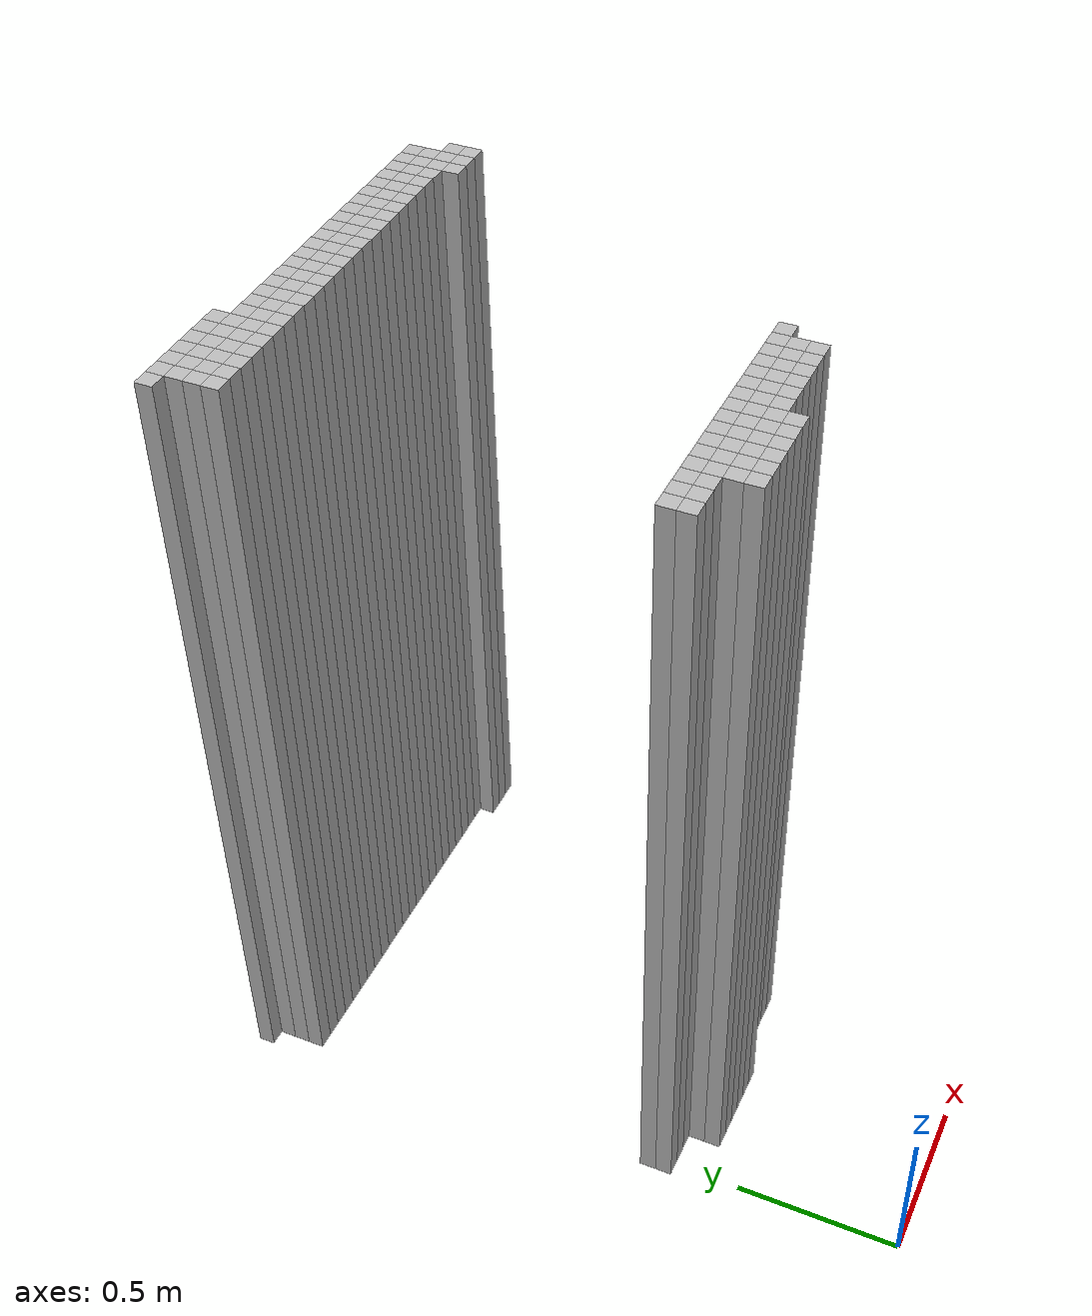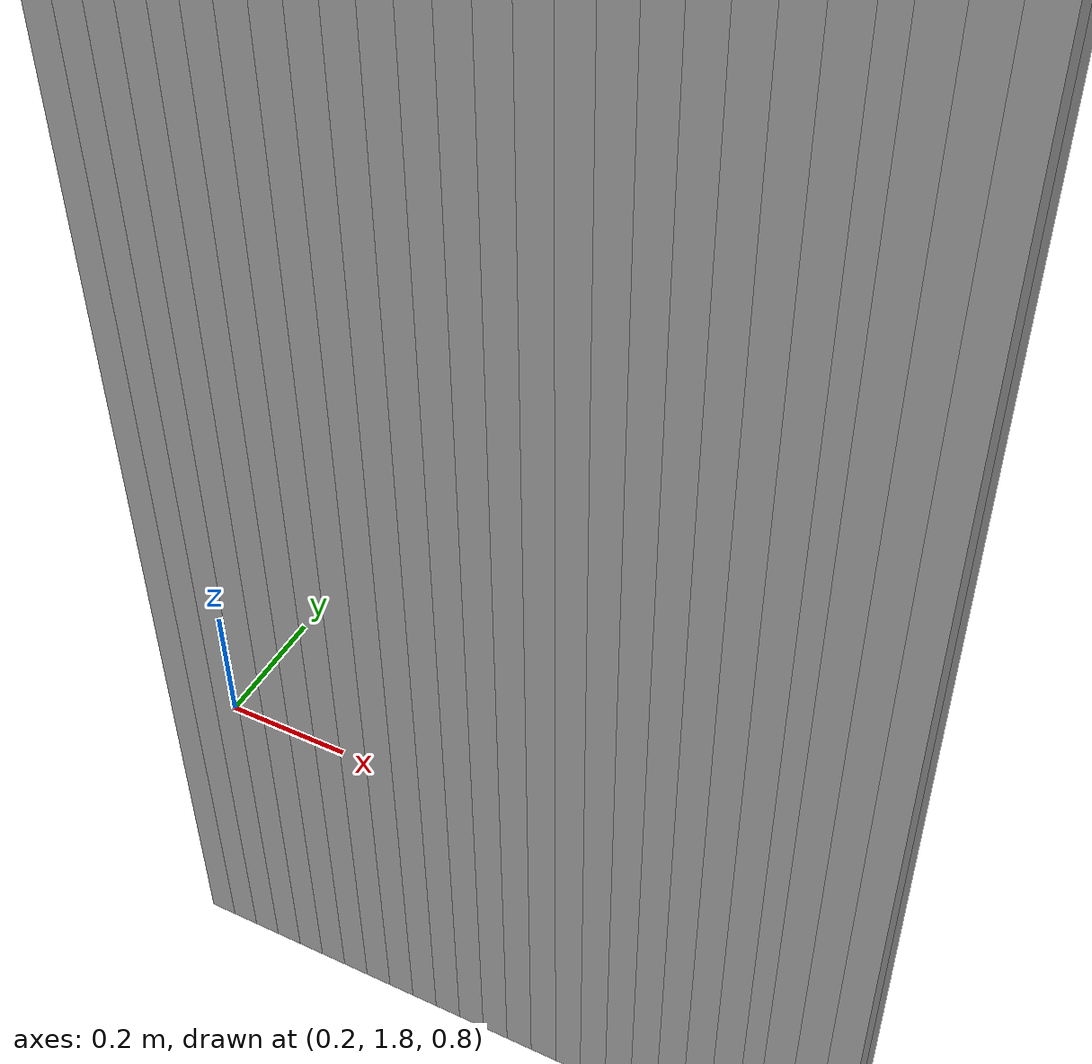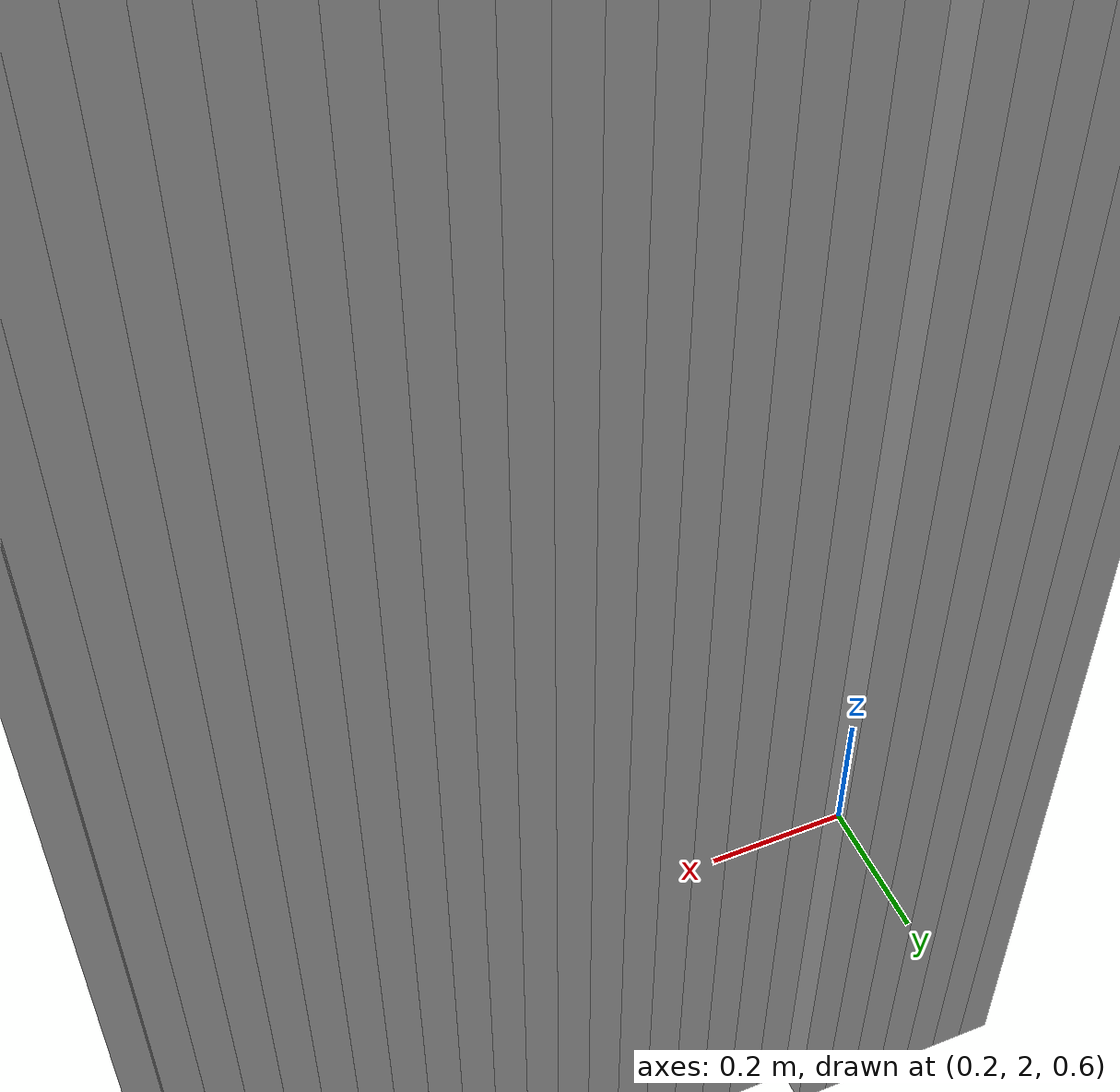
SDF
<sdf version="1.9">
 <world name="map_world">
  <model name="wall_222_112">
   <static>true</static>
   <pose>-0.061 2.080 1.250 0 0 0</pose>
   <link name="link">
    <collision name="collision"><geometry><box><size>0.050 0.050 2.500</size></box></geometry></collision>
    <visual name="visual"><geometry><box><size>0.050 0.050 2.500</size></box></geometry></visual>
   </link>
  </model>
  <model name="wall_223_112">
   <static>true</static>
   <pose>-0.011 2.080 1.250 0 0 0</pose>
   <link name="link">
    <collision name="collision"><geometry><box><size>0.050 0.050 2.500</size></box></geometry></collision>
    <visual name="visual"><geometry><box><size>0.050 0.050 2.500</size></box></geometry></visual>
   </link>
  </model>
  <model name="wall_224_112">
   <static>true</static>
   <pose>0.039 2.080 1.250 0 0 0</pose>
   <link name="link">
    <collision name="collision"><geometry><box><size>0.050 0.050 2.500</size></box></geometry></collision>
    <visual name="visual"><geometry><box><size>0.050 0.050 2.500</size></box></geometry></visual>
   </link>
  </model>
  <model name="wall_225_112">
   <static>true</static>
   <pose>0.089 2.080 1.250 0 0 0</pose>
   <link name="link">
    <collision name="collision"><geometry><box><size>0.050 0.050 2.500</size></box></geometry></collision>
    <visual name="visual"><geometry><box><size>0.050 0.050 2.500</size></box></geometry></visual>
   </link>
  </model>
  <model name="wall_226_112">
   <static>true</static>
   <pose>0.139 2.080 1.250 0 0 0</pose>
   <link name="link">
    <collision name="collision"><geometry><box><size>0.050 0.050 2.500</size></box></geometry></collision>
    <visual name="visual"><geometry><box><size>0.050 0.050 2.500</size></box></geometry></visual>
   </link>
  </model>
  <model name="wall_227_112">
   <static>true</static>
   <pose>0.189 2.080 1.250 0 0 0</pose>
   <link name="link">
    <collision name="collision"><geometry><box><size>0.050 0.050 2.500</size></box></geometry></collision>
    <visual name="visual"><geometry><box><size>0.050 0.050 2.500</size></box></geometry></visual>
   </link>
  </model>
  <model name="wall_228_112">
   <static>true</static>
   <pose>0.239 2.080 1.250 0 0 0</pose>
   <link name="link">
    <collision name="collision"><geometry><box><size>0.050 0.050 2.500</size></box></geometry></collision>
    <visual name="visual"><geometry><box><size>0.050 0.050 2.500</size></box></geometry></visual>
   </link>
  </model>
  <model name="wall_223_113">
   <static>true</static>
   <pose>-0.011 2.030 1.250 0 0 0</pose>
   <link name="link">
    <collision name="collision"><geometry><box><size>0.050 0.050 2.500</size></box></geometry></collision>
    <visual name="visual"><geometry><box><size>0.050 0.050 2.500</size></box></geometry></visual>
   </link>
  </model>
  <model name="wall_224_113">
   <static>true</static>
   <pose>0.039 2.030 1.250 0 0 0</pose>
   <link name="link">
    <collision name="collision"><geometry><box><size>0.050 0.050 2.500</size></box></geometry></collision>
    <visual name="visual"><geometry><box><size>0.050 0.050 2.500</size></box></geometry></visual>
   </link>
  </model>
  <model name="wall_225_113">
   <static>true</static>
   <pose>0.089 2.030 1.250 0 0 0</pose>
   <link name="link">
    <collision name="collision"><geometry><box><size>0.050 0.050 2.500</size></box></geometry></collision>
    <visual name="visual"><geometry><box><size>0.050 0.050 2.500</size></box></geometry></visual>
   </link>
  </model>
  <model name="wall_226_113">
   <static>true</static>
   <pose>0.139 2.030 1.250 0 0 0</pose>
   <link name="link">
    <collision name="collision"><geometry><box><size>0.050 0.050 2.500</size></box></geometry></collision>
    <visual name="visual"><geometry><box><size>0.050 0.050 2.500</size></box></geometry></visual>
   </link>
  </model>
  <model name="wall_227_113">
   <static>true</static>
   <pose>0.189 2.030 1.250 0 0 0</pose>
   <link name="link">
    <collision name="collision"><geometry><box><size>0.050 0.050 2.500</size></box></geometry></collision>
    <visual name="visual"><geometry><box><size>0.050 0.050 2.500</size></box></geometry></visual>
   </link>
  </model>
  <model name="wall_228_113">
   <static>true</static>
   <pose>0.239 2.030 1.250 0 0 0</pose>
   <link name="link">
    <collision name="collision"><geometry><box><size>0.050 0.050 2.500</size></box></geometry></collision>
    <visual name="visual"><geometry><box><size>0.050 0.050 2.500</size></box></geometry></visual>
   </link>
  </model>
  <model name="wall_229_113">
   <static>true</static>
   <pose>0.289 2.030 1.250 0 0 0</pose>
   <link name="link">
    <collision name="collision"><geometry><box><size>0.050 0.050 2.500</size></box></geometry></collision>
    <visual name="visual"><geometry><box><size>0.050 0.050 2.500</size></box></geometry></visual>
   </link>
  </model>
  <model name="wall_230_113">
   <static>true</static>
   <pose>0.339 2.030 1.250 0 0 0</pose>
   <link name="link">
    <collision name="collision"><geometry><box><size>0.050 0.050 2.500</size></box></geometry></collision>
    <visual name="visual"><geometry><box><size>0.050 0.050 2.500</size></box></geometry></visual>
   </link>
  </model>
  <model name="wall_231_113">
   <static>true</static>
   <pose>0.389 2.030 1.250 0 0 0</pose>
   <link name="link">
    <collision name="collision"><geometry><box><size>0.050 0.050 2.500</size></box></geometry></collision>
    <visual name="visual"><geometry><box><size>0.050 0.050 2.500</size></box></geometry></visual>
   </link>
  </model>
  <model name="wall_232_113">
   <static>true</static>
   <pose>0.439 2.030 1.250 0 0 0</pose>
   <link name="link">
    <collision name="collision"><geometry><box><size>0.050 0.050 2.500</size></box></geometry></collision>
    <visual name="visual"><geometry><box><size>0.050 0.050 2.500</size></box></geometry></visual>
   </link>
  </model>
  <model name="wall_233_113">
   <static>true</static>
   <pose>0.489 2.030 1.250 0 0 0</pose>
   <link name="link">
    <collision name="collision"><geometry><box><size>0.050 0.050 2.500</size></box></geometry></collision>
    <visual name="visual"><geometry><box><size>0.050 0.050 2.500</size></box></geometry></visual>
   </link>
  </model>
  <model name="wall_234_113">
   <static>true</static>
   <pose>0.539 2.030 1.250 0 0 0</pose>
   <link name="link">
    <collision name="collision"><geometry><box><size>0.050 0.050 2.500</size></box></geometry></collision>
    <visual name="visual"><geometry><box><size>0.050 0.050 2.500</size></box></geometry></visual>
   </link>
  </model>
  <model name="wall_235_113">
   <static>true</static>
   <pose>0.589 2.030 1.250 0 0 0</pose>
   <link name="link">
    <collision name="collision"><geometry><box><size>0.050 0.050 2.500</size></box></geometry></collision>
    <visual name="visual"><geometry><box><size>0.050 0.050 2.500</size></box></geometry></visual>
   </link>
  </model>
  <model name="wall_236_113">
   <static>true</static>
   <pose>0.639 2.030 1.250 0 0 0</pose>
   <link name="link">
    <collision name="collision"><geometry><box><size>0.050 0.050 2.500</size></box></geometry></collision>
    <visual name="visual"><geometry><box><size>0.050 0.050 2.500</size></box></geometry></visual>
   </link>
  </model>
  <model name="wall_237_113">
   <static>true</static>
   <pose>0.689 2.030 1.250 0 0 0</pose>
   <link name="link">
    <collision name="collision"><geometry><box><size>0.050 0.050 2.500</size></box></geometry></collision>
    <visual name="visual"><geometry><box><size>0.050 0.050 2.500</size></box></geometry></visual>
   </link>
  </model>
  <model name="wall_238_113">
   <static>true</static>
   <pose>0.739 2.030 1.250 0 0 0</pose>
   <link name="link">
    <collision name="collision"><geometry><box><size>0.050 0.050 2.500</size></box></geometry></collision>
    <visual name="visual"><geometry><box><size>0.050 0.050 2.500</size></box></geometry></visual>
   </link>
  </model>
  <model name="wall_239_113">
   <static>true</static>
   <pose>0.789 2.030 1.250 0 0 0</pose>
   <link name="link">
    <collision name="collision"><geometry><box><size>0.050 0.050 2.500</size></box></geometry></collision>
    <visual name="visual"><geometry><box><size>0.050 0.050 2.500</size></box></geometry></visual>
   </link>
  </model>
  <model name="wall_240_113">
   <static>true</static>
   <pose>0.839 2.030 1.250 0 0 0</pose>
   <link name="link">
    <collision name="collision"><geometry><box><size>0.050 0.050 2.500</size></box></geometry></collision>
    <visual name="visual"><geometry><box><size>0.050 0.050 2.500</size></box></geometry></visual>
   </link>
  </model>
  <model name="wall_241_113">
   <static>true</static>
   <pose>0.889 2.030 1.250 0 0 0</pose>
   <link name="link">
    <collision name="collision"><geometry><box><size>0.050 0.050 2.500</size></box></geometry></collision>
    <visual name="visual"><geometry><box><size>0.050 0.050 2.500</size></box></geometry></visual>
   </link>
  </model>
  <model name="wall_242_113">
   <static>true</static>
   <pose>0.939 2.030 1.250 0 0 0</pose>
   <link name="link">
    <collision name="collision"><geometry><box><size>0.050 0.050 2.500</size></box></geometry></collision>
    <visual name="visual"><geometry><box><size>0.050 0.050 2.500</size></box></geometry></visual>
   </link>
  </model>
  <model name="wall_243_113">
   <static>true</static>
   <pose>0.989 2.030 1.250 0 0 0</pose>
   <link name="link">
    <collision name="collision"><geometry><box><size>0.050 0.050 2.500</size></box></geometry></collision>
    <visual name="visual"><geometry><box><size>0.050 0.050 2.500</size></box></geometry></visual>
   </link>
  </model>
  <model name="wall_244_113">
   <static>true</static>
   <pose>1.039 2.030 1.250 0 0 0</pose>
   <link name="link">
    <collision name="collision"><geometry><box><size>0.050 0.050 2.500</size></box></geometry></collision>
    <visual name="visual"><geometry><box><size>0.050 0.050 2.500</size></box></geometry></visual>
   </link>
  </model>
  <model name="wall_245_113">
   <static>true</static>
   <pose>1.089 2.030 1.250 0 0 0</pose>
   <link name="link">
    <collision name="collision"><geometry><box><size>0.050 0.050 2.500</size></box></geometry></collision>
    <visual name="visual"><geometry><box><size>0.050 0.050 2.500</size></box></geometry></visual>
   </link>
  </model>
  <model name="wall_246_113">
   <static>true</static>
   <pose>1.139 2.030 1.250 0 0 0</pose>
   <link name="link">
    <collision name="collision"><geometry><box><size>0.050 0.050 2.500</size></box></geometry></collision>
    <visual name="visual"><geometry><box><size>0.050 0.050 2.500</size></box></geometry></visual>
   </link>
  </model>
  <model name="wall_247_113">
   <static>true</static>
   <pose>1.189 2.030 1.250 0 0 0</pose>
   <link name="link">
    <collision name="collision"><geometry><box><size>0.050 0.050 2.500</size></box></geometry></collision>
    <visual name="visual"><geometry><box><size>0.050 0.050 2.500</size></box></geometry></visual>
   </link>
  </model>
  <model name="wall_223_114">
   <static>true</static>
   <pose>-0.011 1.980 1.250 0 0 0</pose>
   <link name="link">
    <collision name="collision"><geometry><box><size>0.050 0.050 2.500</size></box></geometry></collision>
    <visual name="visual"><geometry><box><size>0.050 0.050 2.500</size></box></geometry></visual>
   </link>
  </model>
  <model name="wall_224_114">
   <static>true</static>
   <pose>0.039 1.980 1.250 0 0 0</pose>
   <link name="link">
    <collision name="collision"><geometry><box><size>0.050 0.050 2.500</size></box></geometry></collision>
    <visual name="visual"><geometry><box><size>0.050 0.050 2.500</size></box></geometry></visual>
   </link>
  </model>
  <model name="wall_225_114">
   <static>true</static>
   <pose>0.089 1.980 1.250 0 0 0</pose>
   <link name="link">
    <collision name="collision"><geometry><box><size>0.050 0.050 2.500</size></box></geometry></collision>
    <visual name="visual"><geometry><box><size>0.050 0.050 2.500</size></box></geometry></visual>
   </link>
  </model>
  <model name="wall_226_114">
   <static>true</static>
   <pose>0.139 1.980 1.250 0 0 0</pose>
   <link name="link">
    <collision name="collision"><geometry><box><size>0.050 0.050 2.500</size></box></geometry></collision>
    <visual name="visual"><geometry><box><size>0.050 0.050 2.500</size></box></geometry></visual>
   </link>
  </model>
  <model name="wall_227_114">
   <static>true</static>
   <pose>0.189 1.980 1.250 0 0 0</pose>
   <link name="link">
    <collision name="collision"><geometry><box><size>0.050 0.050 2.500</size></box></geometry></collision>
    <visual name="visual"><geometry><box><size>0.050 0.050 2.500</size></box></geometry></visual>
   </link>
  </model>
  <model name="wall_228_114">
   <static>true</static>
   <pose>0.239 1.980 1.250 0 0 0</pose>
   <link name="link">
    <collision name="collision"><geometry><box><size>0.050 0.050 2.500</size></box></geometry></collision>
    <visual name="visual"><geometry><box><size>0.050 0.050 2.500</size></box></geometry></visual>
   </link>
  </model>
  <model name="wall_229_114">
   <static>true</static>
   <pose>0.289 1.980 1.250 0 0 0</pose>
   <link name="link">
    <collision name="collision"><geometry><box><size>0.050 0.050 2.500</size></box></geometry></collision>
    <visual name="visual"><geometry><box><size>0.050 0.050 2.500</size></box></geometry></visual>
   </link>
  </model>
  <model name="wall_230_114">
   <static>true</static>
   <pose>0.339 1.980 1.250 0 0 0</pose>
   <link name="link">
    <collision name="collision"><geometry><box><size>0.050 0.050 2.500</size></box></geometry></collision>
    <visual name="visual"><geometry><box><size>0.050 0.050 2.500</size></box></geometry></visual>
   </link>
  </model>
  <model name="wall_231_114">
   <static>true</static>
   <pose>0.389 1.980 1.250 0 0 0</pose>
   <link name="link">
    <collision name="collision"><geometry><box><size>0.050 0.050 2.500</size></box></geometry></collision>
    <visual name="visual"><geometry><box><size>0.050 0.050 2.500</size></box></geometry></visual>
   </link>
  </model>
  <model name="wall_232_114">
   <static>true</static>
   <pose>0.439 1.980 1.250 0 0 0</pose>
   <link name="link">
    <collision name="collision"><geometry><box><size>0.050 0.050 2.500</size></box></geometry></collision>
    <visual name="visual"><geometry><box><size>0.050 0.050 2.500</size></box></geometry></visual>
   </link>
  </model>
  <model name="wall_233_114">
   <static>true</static>
   <pose>0.489 1.980 1.250 0 0 0</pose>
   <link name="link">
    <collision name="collision"><geometry><box><size>0.050 0.050 2.500</size></box></geometry></collision>
    <visual name="visual"><geometry><box><size>0.050 0.050 2.500</size></box></geometry></visual>
   </link>
  </model>
  <model name="wall_234_114">
   <static>true</static>
   <pose>0.539 1.980 1.250 0 0 0</pose>
   <link name="link">
    <collision name="collision"><geometry><box><size>0.050 0.050 2.500</size></box></geometry></collision>
    <visual name="visual"><geometry><box><size>0.050 0.050 2.500</size></box></geometry></visual>
   </link>
  </model>
  <model name="wall_235_114">
   <static>true</static>
   <pose>0.589 1.980 1.250 0 0 0</pose>
   <link name="link">
    <collision name="collision"><geometry><box><size>0.050 0.050 2.500</size></box></geometry></collision>
    <visual name="visual"><geometry><box><size>0.050 0.050 2.500</size></box></geometry></visual>
   </link>
  </model>
  <model name="wall_236_114">
   <static>true</static>
   <pose>0.639 1.980 1.250 0 0 0</pose>
   <link name="link">
    <collision name="collision"><geometry><box><size>0.050 0.050 2.500</size></box></geometry></collision>
    <visual name="visual"><geometry><box><size>0.050 0.050 2.500</size></box></geometry></visual>
   </link>
  </model>
  <model name="wall_237_114">
   <static>true</static>
   <pose>0.689 1.980 1.250 0 0 0</pose>
   <link name="link">
    <collision name="collision"><geometry><box><size>0.050 0.050 2.500</size></box></geometry></collision>
    <visual name="visual"><geometry><box><size>0.050 0.050 2.500</size></box></geometry></visual>
   </link>
  </model>
  <model name="wall_238_114">
   <static>true</static>
   <pose>0.739 1.980 1.250 0 0 0</pose>
   <link name="link">
    <collision name="collision"><geometry><box><size>0.050 0.050 2.500</size></box></geometry></collision>
    <visual name="visual"><geometry><box><size>0.050 0.050 2.500</size></box></geometry></visual>
   </link>
  </model>
  <model name="wall_239_114">
   <static>true</static>
   <pose>0.789 1.980 1.250 0 0 0</pose>
   <link name="link">
    <collision name="collision"><geometry><box><size>0.050 0.050 2.500</size></box></geometry></collision>
    <visual name="visual"><geometry><box><size>0.050 0.050 2.500</size></box></geometry></visual>
   </link>
  </model>
  <model name="wall_240_114">
   <static>true</static>
   <pose>0.839 1.980 1.250 0 0 0</pose>
   <link name="link">
    <collision name="collision"><geometry><box><size>0.050 0.050 2.500</size></box></geometry></collision>
    <visual name="visual"><geometry><box><size>0.050 0.050 2.500</size></box></geometry></visual>
   </link>
  </model>
  <model name="wall_241_114">
   <static>true</static>
   <pose>0.889 1.980 1.250 0 0 0</pose>
   <link name="link">
    <collision name="collision"><geometry><box><size>0.050 0.050 2.500</size></box></geometry></collision>
    <visual name="visual"><geometry><box><size>0.050 0.050 2.500</size></box></geometry></visual>
   </link>
  </model>
  <model name="wall_242_114">
   <static>true</static>
   <pose>0.939 1.980 1.250 0 0 0</pose>
   <link name="link">
    <collision name="collision"><geometry><box><size>0.050 0.050 2.500</size></box></geometry></collision>
    <visual name="visual"><geometry><box><size>0.050 0.050 2.500</size></box></geometry></visual>
   </link>
  </model>
  <model name="wall_243_114">
   <static>true</static>
   <pose>0.989 1.980 1.250 0 0 0</pose>
   <link name="link">
    <collision name="collision"><geometry><box><size>0.050 0.050 2.500</size></box></geometry></collision>
    <visual name="visual"><geometry><box><size>0.050 0.050 2.500</size></box></geometry></visual>
   </link>
  </model>
  <model name="wall_244_114">
   <static>true</static>
   <pose>1.039 1.980 1.250 0 0 0</pose>
   <link name="link">
    <collision name="collision"><geometry><box><size>0.050 0.050 2.500</size></box></geometry></collision>
    <visual name="visual"><geometry><box><size>0.050 0.050 2.500</size></box></geometry></visual>
   </link>
  </model>
  <model name="wall_245_114">
   <static>true</static>
   <pose>1.089 1.980 1.250 0 0 0</pose>
   <link name="link">
    <collision name="collision"><geometry><box><size>0.050 0.050 2.500</size></box></geometry></collision>
    <visual name="visual"><geometry><box><size>0.050 0.050 2.500</size></box></geometry></visual>
   </link>
  </model>
  <model name="wall_246_114">
   <static>true</static>
   <pose>1.139 1.980 1.250 0 0 0</pose>
   <link name="link">
    <collision name="collision"><geometry><box><size>0.050 0.050 2.500</size></box></geometry></collision>
    <visual name="visual"><geometry><box><size>0.050 0.050 2.500</size></box></geometry></visual>
   </link>
  </model>
  <model name="wall_247_114">
   <static>true</static>
   <pose>1.189 1.980 1.250 0 0 0</pose>
   <link name="link">
    <collision name="collision"><geometry><box><size>0.050 0.050 2.500</size></box></geometry></collision>
    <visual name="visual"><geometry><box><size>0.050 0.050 2.500</size></box></geometry></visual>
   </link>
  </model>
  <model name="wall_223_115">
   <static>true</static>
   <pose>-0.011 1.930 1.250 0 0 0</pose>
   <link name="link">
    <collision name="collision"><geometry><box><size>0.050 0.050 2.500</size></box></geometry></collision>
    <visual name="visual"><geometry><box><size>0.050 0.050 2.500</size></box></geometry></visual>
   </link>
  </model>
  <model name="wall_224_115">
   <static>true</static>
   <pose>0.039 1.930 1.250 0 0 0</pose>
   <link name="link">
    <collision name="collision"><geometry><box><size>0.050 0.050 2.500</size></box></geometry></collision>
    <visual name="visual"><geometry><box><size>0.050 0.050 2.500</size></box></geometry></visual>
   </link>
  </model>
  <model name="wall_225_115">
   <static>true</static>
   <pose>0.089 1.930 1.250 0 0 0</pose>
   <link name="link">
    <collision name="collision"><geometry><box><size>0.050 0.050 2.500</size></box></geometry></collision>
    <visual name="visual"><geometry><box><size>0.050 0.050 2.500</size></box></geometry></visual>
   </link>
  </model>
  <model name="wall_226_115">
   <static>true</static>
   <pose>0.139 1.930 1.250 0 0 0</pose>
   <link name="link">
    <collision name="collision"><geometry><box><size>0.050 0.050 2.500</size></box></geometry></collision>
    <visual name="visual"><geometry><box><size>0.050 0.050 2.500</size></box></geometry></visual>
   </link>
  </model>
  <model name="wall_227_115">
   <static>true</static>
   <pose>0.189 1.930 1.250 0 0 0</pose>
   <link name="link">
    <collision name="collision"><geometry><box><size>0.050 0.050 2.500</size></box></geometry></collision>
    <visual name="visual"><geometry><box><size>0.050 0.050 2.500</size></box></geometry></visual>
   </link>
  </model>
  <model name="wall_228_115">
   <static>true</static>
   <pose>0.239 1.930 1.250 0 0 0</pose>
   <link name="link">
    <collision name="collision"><geometry><box><size>0.050 0.050 2.500</size></box></geometry></collision>
    <visual name="visual"><geometry><box><size>0.050 0.050 2.500</size></box></geometry></visual>
   </link>
  </model>
  <model name="wall_229_115">
   <static>true</static>
   <pose>0.289 1.930 1.250 0 0 0</pose>
   <link name="link">
    <collision name="collision"><geometry><box><size>0.050 0.050 2.500</size></box></geometry></collision>
    <visual name="visual"><geometry><box><size>0.050 0.050 2.500</size></box></geometry></visual>
   </link>
  </model>
  <model name="wall_230_115">
   <static>true</static>
   <pose>0.339 1.930 1.250 0 0 0</pose>
   <link name="link">
    <collision name="collision"><geometry><box><size>0.050 0.050 2.500</size></box></geometry></collision>
    <visual name="visual"><geometry><box><size>0.050 0.050 2.500</size></box></geometry></visual>
   </link>
  </model>
  <model name="wall_231_115">
   <static>true</static>
   <pose>0.389 1.930 1.250 0 0 0</pose>
   <link name="link">
    <collision name="collision"><geometry><box><size>0.050 0.050 2.500</size></box></geometry></collision>
    <visual name="visual"><geometry><box><size>0.050 0.050 2.500</size></box></geometry></visual>
   </link>
  </model>
  <model name="wall_232_115">
   <static>true</static>
   <pose>0.439 1.930 1.250 0 0 0</pose>
   <link name="link">
    <collision name="collision"><geometry><box><size>0.050 0.050 2.500</size></box></geometry></collision>
    <visual name="visual"><geometry><box><size>0.050 0.050 2.500</size></box></geometry></visual>
   </link>
  </model>
  <model name="wall_233_115">
   <static>true</static>
   <pose>0.489 1.930 1.250 0 0 0</pose>
   <link name="link">
    <collision name="collision"><geometry><box><size>0.050 0.050 2.500</size></box></geometry></collision>
    <visual name="visual"><geometry><box><size>0.050 0.050 2.500</size></box></geometry></visual>
   </link>
  </model>
  <model name="wall_234_115">
   <static>true</static>
   <pose>0.539 1.930 1.250 0 0 0</pose>
   <link name="link">
    <collision name="collision"><geometry><box><size>0.050 0.050 2.500</size></box></geometry></collision>
    <visual name="visual"><geometry><box><size>0.050 0.050 2.500</size></box></geometry></visual>
   </link>
  </model>
  <model name="wall_235_115">
   <static>true</static>
   <pose>0.589 1.930 1.250 0 0 0</pose>
   <link name="link">
    <collision name="collision"><geometry><box><size>0.050 0.050 2.500</size></box></geometry></collision>
    <visual name="visual"><geometry><box><size>0.050 0.050 2.500</size></box></geometry></visual>
   </link>
  </model>
  <model name="wall_236_115">
   <static>true</static>
   <pose>0.639 1.930 1.250 0 0 0</pose>
   <link name="link">
    <collision name="collision"><geometry><box><size>0.050 0.050 2.500</size></box></geometry></collision>
    <visual name="visual"><geometry><box><size>0.050 0.050 2.500</size></box></geometry></visual>
   </link>
  </model>
  <model name="wall_237_115">
   <static>true</static>
   <pose>0.689 1.930 1.250 0 0 0</pose>
   <link name="link">
    <collision name="collision"><geometry><box><size>0.050 0.050 2.500</size></box></geometry></collision>
    <visual name="visual"><geometry><box><size>0.050 0.050 2.500</size></box></geometry></visual>
   </link>
  </model>
  <model name="wall_238_115">
   <static>true</static>
   <pose>0.739 1.930 1.250 0 0 0</pose>
   <link name="link">
    <collision name="collision"><geometry><box><size>0.050 0.050 2.500</size></box></geometry></collision>
    <visual name="visual"><geometry><box><size>0.050 0.050 2.500</size></box></geometry></visual>
   </link>
  </model>
  <model name="wall_239_115">
   <static>true</static>
   <pose>0.789 1.930 1.250 0 0 0</pose>
   <link name="link">
    <collision name="collision"><geometry><box><size>0.050 0.050 2.500</size></box></geometry></collision>
    <visual name="visual"><geometry><box><size>0.050 0.050 2.500</size></box></geometry></visual>
   </link>
  </model>
  <model name="wall_240_115">
   <static>true</static>
   <pose>0.839 1.930 1.250 0 0 0</pose>
   <link name="link">
    <collision name="collision"><geometry><box><size>0.050 0.050 2.500</size></box></geometry></collision>
    <visual name="visual"><geometry><box><size>0.050 0.050 2.500</size></box></geometry></visual>
   </link>
  </model>
  <model name="wall_241_115">
   <static>true</static>
   <pose>0.889 1.930 1.250 0 0 0</pose>
   <link name="link">
    <collision name="collision"><geometry><box><size>0.050 0.050 2.500</size></box></geometry></collision>
    <visual name="visual"><geometry><box><size>0.050 0.050 2.500</size></box></geometry></visual>
   </link>
  </model>
  <model name="wall_242_115">
   <static>true</static>
   <pose>0.939 1.930 1.250 0 0 0</pose>
   <link name="link">
    <collision name="collision"><geometry><box><size>0.050 0.050 2.500</size></box></geometry></collision>
    <visual name="visual"><geometry><box><size>0.050 0.050 2.500</size></box></geometry></visual>
   </link>
  </model>
  <model name="wall_243_115">
   <static>true</static>
   <pose>0.989 1.930 1.250 0 0 0</pose>
   <link name="link">
    <collision name="collision"><geometry><box><size>0.050 0.050 2.500</size></box></geometry></collision>
    <visual name="visual"><geometry><box><size>0.050 0.050 2.500</size></box></geometry></visual>
   </link>
  </model>
  <model name="wall_244_115">
   <static>true</static>
   <pose>1.039 1.930 1.250 0 0 0</pose>
   <link name="link">
    <collision name="collision"><geometry><box><size>0.050 0.050 2.500</size></box></geometry></collision>
    <visual name="visual"><geometry><box><size>0.050 0.050 2.500</size></box></geometry></visual>
   </link>
  </model>
  <model name="wall_245_115">
   <static>true</static>
   <pose>1.089 1.930 1.250 0 0 0</pose>
   <link name="link">
    <collision name="collision"><geometry><box><size>0.050 0.050 2.500</size></box></geometry></collision>
    <visual name="visual"><geometry><box><size>0.050 0.050 2.500</size></box></geometry></visual>
   </link>
  </model>
  <model name="wall_246_115">
   <static>true</static>
   <pose>1.139 1.930 1.250 0 0 0</pose>
   <link name="link">
    <collision name="collision"><geometry><box><size>0.050 0.050 2.500</size></box></geometry></collision>
    <visual name="visual"><geometry><box><size>0.050 0.050 2.500</size></box></geometry></visual>
   </link>
  </model>
  <model name="wall_247_115">
   <static>true</static>
   <pose>1.189 1.930 1.250 0 0 0</pose>
   <link name="link">
    <collision name="collision"><geometry><box><size>0.050 0.050 2.500</size></box></geometry></collision>
    <visual name="visual"><geometry><box><size>0.050 0.050 2.500</size></box></geometry></visual>
   </link>
  </model>
  <model name="wall_248_115">
   <static>true</static>
   <pose>1.239 1.930 1.250 0 0 0</pose>
   <link name="link">
    <collision name="collision"><geometry><box><size>0.050 0.050 2.500</size></box></geometry></collision>
    <visual name="visual"><geometry><box><size>0.050 0.050 2.500</size></box></geometry></visual>
   </link>
  </model>
  <model name="wall_246_116">
   <static>true</static>
   <pose>1.139 1.880 1.250 0 0 0</pose>
   <link name="link">
    <collision name="collision"><geometry><box><size>0.050 0.050 2.500</size></box></geometry></collision>
    <visual name="visual"><geometry><box><size>0.050 0.050 2.500</size></box></geometry></visual>
   </link>
  </model>
  <model name="wall_247_116">
   <static>true</static>
   <pose>1.189 1.880 1.250 0 0 0</pose>
   <link name="link">
    <collision name="collision"><geometry><box><size>0.050 0.050 2.500</size></box></geometry></collision>
    <visual name="visual"><geometry><box><size>0.050 0.050 2.500</size></box></geometry></visual>
   </link>
  </model>
  <model name="wall_248_116">
   <static>true</static>
   <pose>1.239 1.880 1.250 0 0 0</pose>
   <link name="link">
    <collision name="collision"><geometry><box><size>0.050 0.050 2.500</size></box></geometry></collision>
    <visual name="visual"><geometry><box><size>0.050 0.050 2.500</size></box></geometry></visual>
   </link>
  </model>
  <model name="wall_223_138">
   <static>true</static>
   <pose>-0.011 0.780 1.250 0 0 0</pose>
   <link name="link">
    <collision name="collision"><geometry><box><size>0.050 0.050 2.500</size></box></geometry></collision>
    <visual name="visual"><geometry><box><size>0.050 0.050 2.500</size></box></geometry></visual>
   </link>
  </model>
  <model name="wall_224_138">
   <static>true</static>
   <pose>0.039 0.780 1.250 0 0 0</pose>
   <link name="link">
    <collision name="collision"><geometry><box><size>0.050 0.050 2.500</size></box></geometry></collision>
    <visual name="visual"><geometry><box><size>0.050 0.050 2.500</size></box></geometry></visual>
   </link>
  </model>
  <model name="wall_225_138">
   <static>true</static>
   <pose>0.089 0.780 1.250 0 0 0</pose>
   <link name="link">
    <collision name="collision"><geometry><box><size>0.050 0.050 2.500</size></box></geometry></collision>
    <visual name="visual"><geometry><box><size>0.050 0.050 2.500</size></box></geometry></visual>
   </link>
  </model>
  <model name="wall_226_138">
   <static>true</static>
   <pose>0.139 0.780 1.250 0 0 0</pose>
   <link name="link">
    <collision name="collision"><geometry><box><size>0.050 0.050 2.500</size></box></geometry></collision>
    <visual name="visual"><geometry><box><size>0.050 0.050 2.500</size></box></geometry></visual>
   </link>
  </model>
  <model name="wall_227_138">
   <static>true</static>
   <pose>0.189 0.780 1.250 0 0 0</pose>
   <link name="link">
    <collision name="collision"><geometry><box><size>0.050 0.050 2.500</size></box></geometry></collision>
    <visual name="visual"><geometry><box><size>0.050 0.050 2.500</size></box></geometry></visual>
   </link>
  </model>
  <model name="wall_228_138">
   <static>true</static>
   <pose>0.239 0.780 1.250 0 0 0</pose>
   <link name="link">
    <collision name="collision"><geometry><box><size>0.050 0.050 2.500</size></box></geometry></collision>
    <visual name="visual"><geometry><box><size>0.050 0.050 2.500</size></box></geometry></visual>
   </link>
  </model>
  <model name="wall_229_138">
   <static>true</static>
   <pose>0.289 0.780 1.250 0 0 0</pose>
   <link name="link">
    <collision name="collision"><geometry><box><size>0.050 0.050 2.500</size></box></geometry></collision>
    <visual name="visual"><geometry><box><size>0.050 0.050 2.500</size></box></geometry></visual>
   </link>
  </model>
  <model name="wall_230_138">
   <static>true</static>
   <pose>0.339 0.780 1.250 0 0 0</pose>
   <link name="link">
    <collision name="collision"><geometry><box><size>0.050 0.050 2.500</size></box></geometry></collision>
    <visual name="visual"><geometry><box><size>0.050 0.050 2.500</size></box></geometry></visual>
   </link>
  </model>
  <model name="wall_231_138">
   <static>true</static>
   <pose>0.389 0.780 1.250 0 0 0</pose>
   <link name="link">
    <collision name="collision"><geometry><box><size>0.050 0.050 2.500</size></box></geometry></collision>
    <visual name="visual"><geometry><box><size>0.050 0.050 2.500</size></box></geometry></visual>
   </link>
  </model>
  <model name="wall_232_138">
   <static>true</static>
   <pose>0.439 0.780 1.250 0 0 0</pose>
   <link name="link">
    <collision name="collision"><geometry><box><size>0.050 0.050 2.500</size></box></geometry></collision>
    <visual name="visual"><geometry><box><size>0.050 0.050 2.500</size></box></geometry></visual>
   </link>
  </model>
  <model name="wall_233_138">
   <static>true</static>
   <pose>0.489 0.780 1.250 0 0 0</pose>
   <link name="link">
    <collision name="collision"><geometry><box><size>0.050 0.050 2.500</size></box></geometry></collision>
    <visual name="visual"><geometry><box><size>0.050 0.050 2.500</size></box></geometry></visual>
   </link>
  </model>
  <model name="wall_234_138">
   <static>true</static>
   <pose>0.539 0.780 1.250 0 0 0</pose>
   <link name="link">
    <collision name="collision"><geometry><box><size>0.050 0.050 2.500</size></box></geometry></collision>
    <visual name="visual"><geometry><box><size>0.050 0.050 2.500</size></box></geometry></visual>
   </link>
  </model>
  <model name="wall_235_138">
   <static>true</static>
   <pose>0.589 0.780 1.250 0 0 0</pose>
   <link name="link">
    <collision name="collision"><geometry><box><size>0.050 0.050 2.500</size></box></geometry></collision>
    <visual name="visual"><geometry><box><size>0.050 0.050 2.500</size></box></geometry></visual>
   </link>
  </model>
  <model name="wall_236_138">
   <static>true</static>
   <pose>0.639 0.780 1.250 0 0 0</pose>
   <link name="link">
    <collision name="collision"><geometry><box><size>0.050 0.050 2.500</size></box></geometry></collision>
    <visual name="visual"><geometry><box><size>0.050 0.050 2.500</size></box></geometry></visual>
   </link>
  </model>
  <model name="wall_237_138">
   <static>true</static>
   <pose>0.689 0.780 1.250 0 0 0</pose>
   <link name="link">
    <collision name="collision"><geometry><box><size>0.050 0.050 2.500</size></box></geometry></collision>
    <visual name="visual"><geometry><box><size>0.050 0.050 2.500</size></box></geometry></visual>
   </link>
  </model>
  <model name="wall_238_138">
   <static>true</static>
   <pose>0.739 0.780 1.250 0 0 0</pose>
   <link name="link">
    <collision name="collision"><geometry><box><size>0.050 0.050 2.500</size></box></geometry></collision>
    <visual name="visual"><geometry><box><size>0.050 0.050 2.500</size></box></geometry></visual>
   </link>
  </model>
  <model name="wall_223_139">
   <static>true</static>
   <pose>-0.011 0.730 1.250 0 0 0</pose>
   <link name="link">
    <collision name="collision"><geometry><box><size>0.050 0.050 2.500</size></box></geometry></collision>
    <visual name="visual"><geometry><box><size>0.050 0.050 2.500</size></box></geometry></visual>
   </link>
  </model>
  <model name="wall_224_139">
   <static>true</static>
   <pose>0.039 0.730 1.250 0 0 0</pose>
   <link name="link">
    <collision name="collision"><geometry><box><size>0.050 0.050 2.500</size></box></geometry></collision>
    <visual name="visual"><geometry><box><size>0.050 0.050 2.500</size></box></geometry></visual>
   </link>
  </model>
  <model name="wall_225_139">
   <static>true</static>
   <pose>0.089 0.730 1.250 0 0 0</pose>
   <link name="link">
    <collision name="collision"><geometry><box><size>0.050 0.050 2.500</size></box></geometry></collision>
    <visual name="visual"><geometry><box><size>0.050 0.050 2.500</size></box></geometry></visual>
   </link>
  </model>
  <model name="wall_226_139">
   <static>true</static>
   <pose>0.139 0.730 1.250 0 0 0</pose>
   <link name="link">
    <collision name="collision"><geometry><box><size>0.050 0.050 2.500</size></box></geometry></collision>
    <visual name="visual"><geometry><box><size>0.050 0.050 2.500</size></box></geometry></visual>
   </link>
  </model>
  <model name="wall_227_139">
   <static>true</static>
   <pose>0.189 0.730 1.250 0 0 0</pose>
   <link name="link">
    <collision name="collision"><geometry><box><size>0.050 0.050 2.500</size></box></geometry></collision>
    <visual name="visual"><geometry><box><size>0.050 0.050 2.500</size></box></geometry></visual>
   </link>
  </model>
  <model name="wall_228_139">
   <static>true</static>
   <pose>0.239 0.730 1.250 0 0 0</pose>
   <link name="link">
    <collision name="collision"><geometry><box><size>0.050 0.050 2.500</size></box></geometry></collision>
    <visual name="visual"><geometry><box><size>0.050 0.050 2.500</size></box></geometry></visual>
   </link>
  </model>
  <model name="wall_229_139">
   <static>true</static>
   <pose>0.289 0.730 1.250 0 0 0</pose>
   <link name="link">
    <collision name="collision"><geometry><box><size>0.050 0.050 2.500</size></box></geometry></collision>
    <visual name="visual"><geometry><box><size>0.050 0.050 2.500</size></box></geometry></visual>
   </link>
  </model>
  <model name="wall_230_139">
   <static>true</static>
   <pose>0.339 0.730 1.250 0 0 0</pose>
   <link name="link">
    <collision name="collision"><geometry><box><size>0.050 0.050 2.500</size></box></geometry></collision>
    <visual name="visual"><geometry><box><size>0.050 0.050 2.500</size></box></geometry></visual>
   </link>
  </model>
  <model name="wall_231_139">
   <static>true</static>
   <pose>0.389 0.730 1.250 0 0 0</pose>
   <link name="link">
    <collision name="collision"><geometry><box><size>0.050 0.050 2.500</size></box></geometry></collision>
    <visual name="visual"><geometry><box><size>0.050 0.050 2.500</size></box></geometry></visual>
   </link>
  </model>
  <model name="wall_232_139">
   <static>true</static>
   <pose>0.439 0.730 1.250 0 0 0</pose>
   <link name="link">
    <collision name="collision"><geometry><box><size>0.050 0.050 2.500</size></box></geometry></collision>
    <visual name="visual"><geometry><box><size>0.050 0.050 2.500</size></box></geometry></visual>
   </link>
  </model>
  <model name="wall_233_139">
   <static>true</static>
   <pose>0.489 0.730 1.250 0 0 0</pose>
   <link name="link">
    <collision name="collision"><geometry><box><size>0.050 0.050 2.500</size></box></geometry></collision>
    <visual name="visual"><geometry><box><size>0.050 0.050 2.500</size></box></geometry></visual>
   </link>
  </model>
  <model name="wall_234_139">
   <static>true</static>
   <pose>0.539 0.730 1.250 0 0 0</pose>
   <link name="link">
    <collision name="collision"><geometry><box><size>0.050 0.050 2.500</size></box></geometry></collision>
    <visual name="visual"><geometry><box><size>0.050 0.050 2.500</size></box></geometry></visual>
   </link>
  </model>
  <model name="wall_235_139">
   <static>true</static>
   <pose>0.589 0.730 1.250 0 0 0</pose>
   <link name="link">
    <collision name="collision"><geometry><box><size>0.050 0.050 2.500</size></box></geometry></collision>
    <visual name="visual"><geometry><box><size>0.050 0.050 2.500</size></box></geometry></visual>
   </link>
  </model>
  <model name="wall_236_139">
   <static>true</static>
   <pose>0.639 0.730 1.250 0 0 0</pose>
   <link name="link">
    <collision name="collision"><geometry><box><size>0.050 0.050 2.500</size></box></geometry></collision>
    <visual name="visual"><geometry><box><size>0.050 0.050 2.500</size></box></geometry></visual>
   </link>
  </model>
  <model name="wall_237_139">
   <static>true</static>
   <pose>0.689 0.730 1.250 0 0 0</pose>
   <link name="link">
    <collision name="collision"><geometry><box><size>0.050 0.050 2.500</size></box></geometry></collision>
    <visual name="visual"><geometry><box><size>0.050 0.050 2.500</size></box></geometry></visual>
   </link>
  </model>
  <model name="wall_226_140">
   <static>true</static>
   <pose>0.139 0.680 1.250 0 0 0</pose>
   <link name="link">
    <collision name="collision"><geometry><box><size>0.050 0.050 2.500</size></box></geometry></collision>
    <visual name="visual"><geometry><box><size>0.050 0.050 2.500</size></box></geometry></visual>
   </link>
  </model>
  <model name="wall_227_140">
   <static>true</static>
   <pose>0.189 0.680 1.250 0 0 0</pose>
   <link name="link">
    <collision name="collision"><geometry><box><size>0.050 0.050 2.500</size></box></geometry></collision>
    <visual name="visual"><geometry><box><size>0.050 0.050 2.500</size></box></geometry></visual>
   </link>
  </model>
  <model name="wall_228_140">
   <static>true</static>
   <pose>0.239 0.680 1.250 0 0 0</pose>
   <link name="link">
    <collision name="collision"><geometry><box><size>0.050 0.050 2.500</size></box></geometry></collision>
    <visual name="visual"><geometry><box><size>0.050 0.050 2.500</size></box></geometry></visual>
   </link>
  </model>
  <model name="wall_229_140">
   <static>true</static>
   <pose>0.289 0.680 1.250 0 0 0</pose>
   <link name="link">
    <collision name="collision"><geometry><box><size>0.050 0.050 2.500</size></box></geometry></collision>
    <visual name="visual"><geometry><box><size>0.050 0.050 2.500</size></box></geometry></visual>
   </link>
  </model>
  <model name="wall_230_140">
   <static>true</static>
   <pose>0.339 0.680 1.250 0 0 0</pose>
   <link name="link">
    <collision name="collision"><geometry><box><size>0.050 0.050 2.500</size></box></geometry></collision>
    <visual name="visual"><geometry><box><size>0.050 0.050 2.500</size></box></geometry></visual>
   </link>
  </model>
  <model name="wall_231_140">
   <static>true</static>
   <pose>0.389 0.680 1.250 0 0 0</pose>
   <link name="link">
    <collision name="collision"><geometry><box><size>0.050 0.050 2.500</size></box></geometry></collision>
    <visual name="visual"><geometry><box><size>0.050 0.050 2.500</size></box></geometry></visual>
   </link>
  </model>
  <model name="wall_232_140">
   <static>true</static>
   <pose>0.439 0.680 1.250 0 0 0</pose>
   <link name="link">
    <collision name="collision"><geometry><box><size>0.050 0.050 2.500</size></box></geometry></collision>
    <visual name="visual"><geometry><box><size>0.050 0.050 2.500</size></box></geometry></visual>
   </link>
  </model>
  <model name="wall_233_140">
   <static>true</static>
   <pose>0.489 0.680 1.250 0 0 0</pose>
   <link name="link">
    <collision name="collision"><geometry><box><size>0.050 0.050 2.500</size></box></geometry></collision>
    <visual name="visual"><geometry><box><size>0.050 0.050 2.500</size></box></geometry></visual>
   </link>
  </model>
  <model name="wall_234_140">
   <static>true</static>
   <pose>0.539 0.680 1.250 0 0 0</pose>
   <link name="link">
    <collision name="collision"><geometry><box><size>0.050 0.050 2.500</size></box></geometry></collision>
    <visual name="visual"><geometry><box><size>0.050 0.050 2.500</size></box></geometry></visual>
   </link>
  </model>
  <model name="wall_235_140">
   <static>true</static>
   <pose>0.589 0.680 1.250 0 0 0</pose>
   <link name="link">
    <collision name="collision"><geometry><box><size>0.050 0.050 2.500</size></box></geometry></collision>
    <visual name="visual"><geometry><box><size>0.050 0.050 2.500</size></box></geometry></visual>
   </link>
  </model>
  <model name="wall_236_140">
   <static>true</static>
   <pose>0.639 0.680 1.250 0 0 0</pose>
   <link name="link">
    <collision name="collision"><geometry><box><size>0.050 0.050 2.500</size></box></geometry></collision>
    <visual name="visual"><geometry><box><size>0.050 0.050 2.500</size></box></geometry></visual>
   </link>
  </model>
  <model name="wall_237_140">
   <static>true</static>
   <pose>0.689 0.680 1.250 0 0 0</pose>
   <link name="link">
    <collision name="collision"><geometry><box><size>0.050 0.050 2.500</size></box></geometry></collision>
    <visual name="visual"><geometry><box><size>0.050 0.050 2.500</size></box></geometry></visual>
   </link>
  </model>
  <model name="wall_226_141">
   <static>true</static>
   <pose>0.139 0.630 1.250 0 0 0</pose>
   <link name="link">
    <collision name="collision"><geometry><box><size>0.050 0.050 2.500</size></box></geometry></collision>
    <visual name="visual"><geometry><box><size>0.050 0.050 2.500</size></box></geometry></visual>
   </link>
  </model>
  <model name="wall_227_141">
   <static>true</static>
   <pose>0.189 0.630 1.250 0 0 0</pose>
   <link name="link">
    <collision name="collision"><geometry><box><size>0.050 0.050 2.500</size></box></geometry></collision>
    <visual name="visual"><geometry><box><size>0.050 0.050 2.500</size></box></geometry></visual>
   </link>
  </model>
  <model name="wall_228_141">
   <static>true</static>
   <pose>0.239 0.630 1.250 0 0 0</pose>
   <link name="link">
    <collision name="collision"><geometry><box><size>0.050 0.050 2.500</size></box></geometry></collision>
    <visual name="visual"><geometry><box><size>0.050 0.050 2.500</size></box></geometry></visual>
   </link>
  </model>
  <model name="wall_229_141">
   <static>true</static>
   <pose>0.289 0.630 1.250 0 0 0</pose>
   <link name="link">
    <collision name="collision"><geometry><box><size>0.050 0.050 2.500</size></box></geometry></collision>
    <visual name="visual"><geometry><box><size>0.050 0.050 2.500</size></box></geometry></visual>
   </link>
  </model>
  <model name="wall_230_141">
   <static>true</static>
   <pose>0.339 0.630 1.250 0 0 0</pose>
   <link name="link">
    <collision name="collision"><geometry><box><size>0.050 0.050 2.500</size></box></geometry></collision>
    <visual name="visual"><geometry><box><size>0.050 0.050 2.500</size></box></geometry></visual>
   </link>
  </model>
  <model name="wall_231_141">
   <static>true</static>
   <pose>0.389 0.630 1.250 0 0 0</pose>
   <link name="link">
    <collision name="collision"><geometry><box><size>0.050 0.050 2.500</size></box></geometry></collision>
    <visual name="visual"><geometry><box><size>0.050 0.050 2.500</size></box></geometry></visual>
   </link>
  </model>
 </world>
</sdf>
